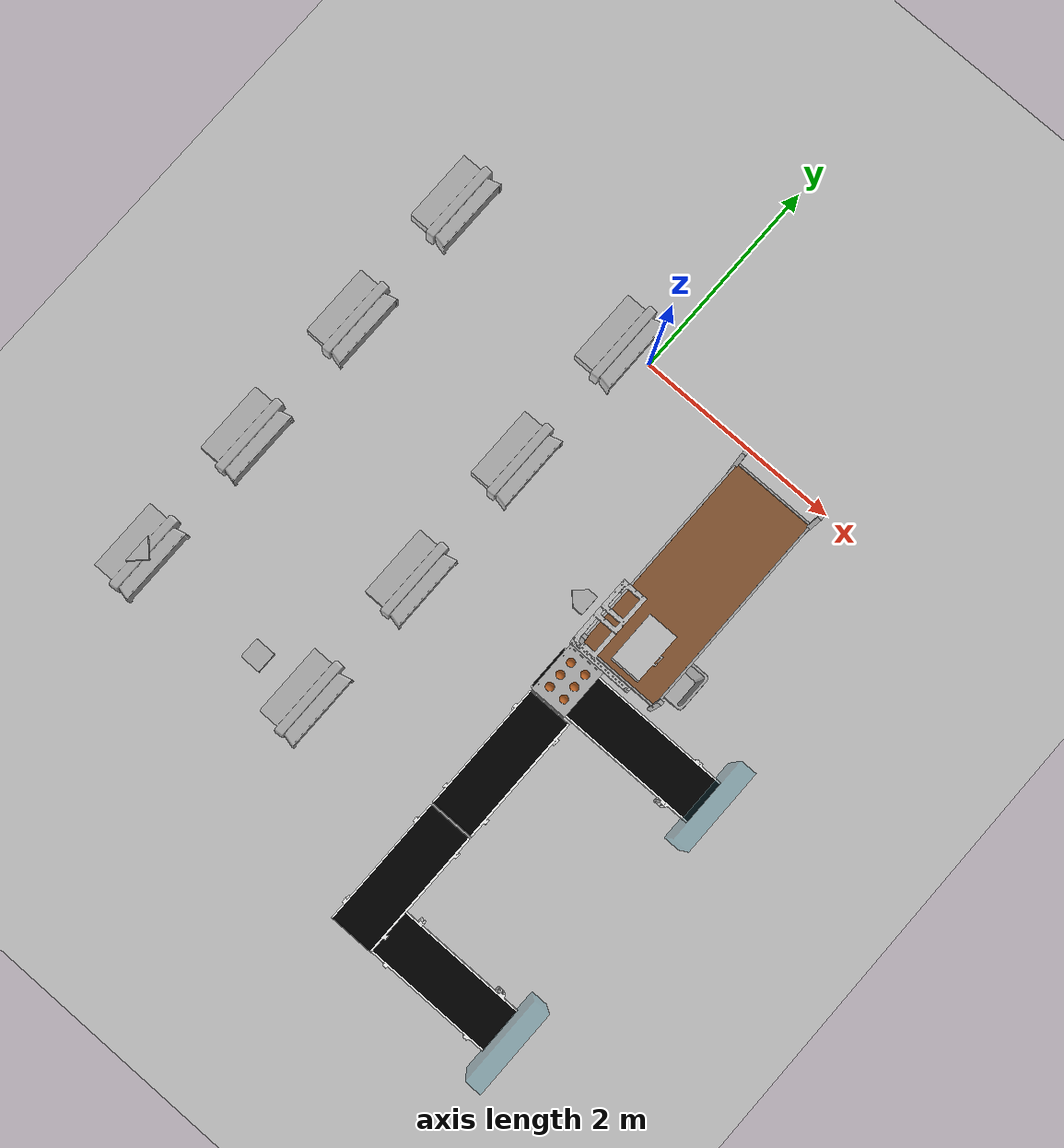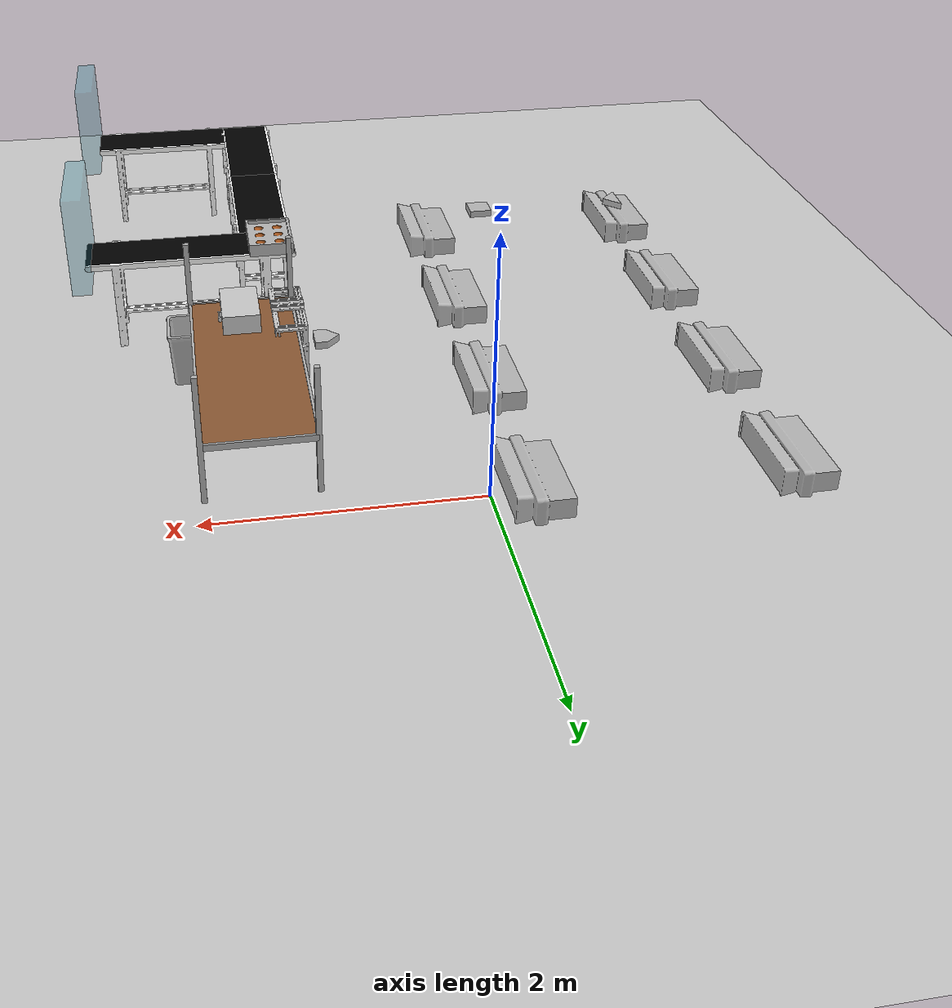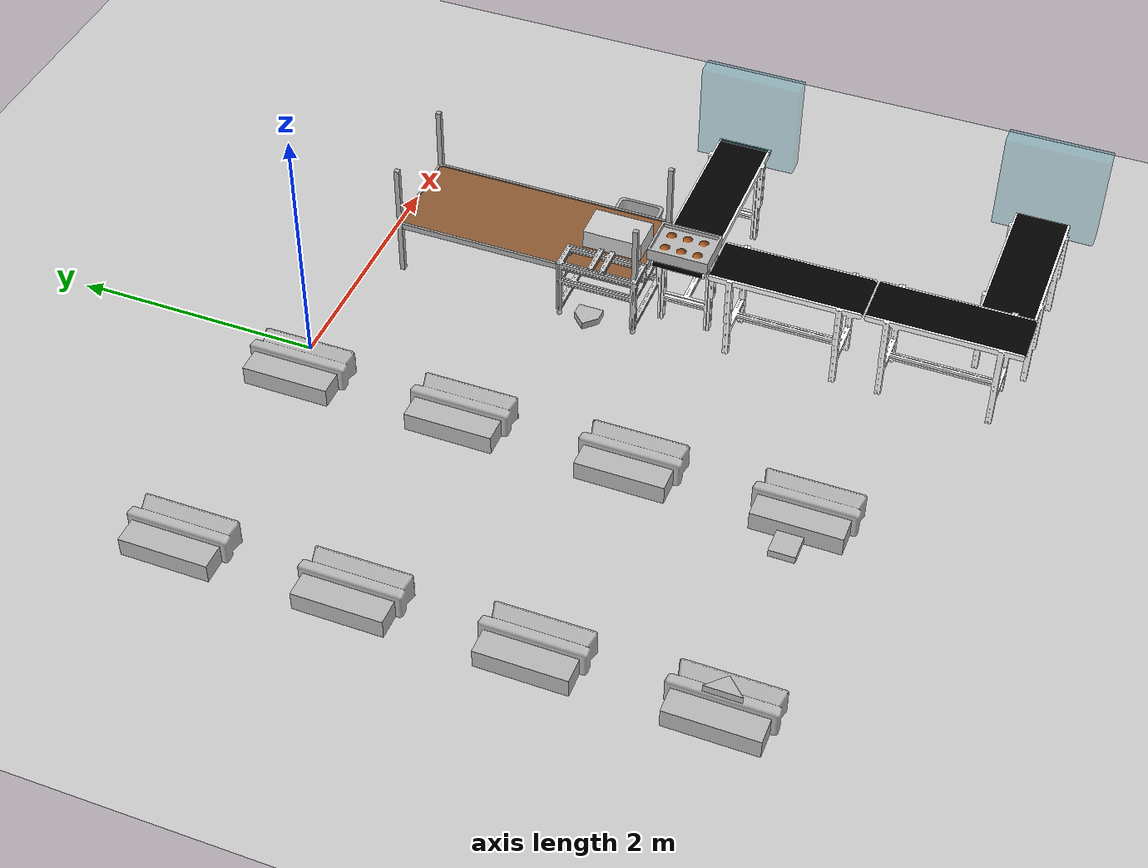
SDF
<sdf version="1.6">
 <world name="eyantra_world">
  <light name="light0" type="directional">
   <pose>0 -18.818 8 0.75 -0 0</pose>
   <diffuse>0.5 0.5 0.5 1</diffuse>
   <specular>0.1 0.1 0.1 1</specular>
   <direction>0.1 0.1 -0.9</direction>
   <attenuation>
    <range>20</range>
    <constant>0.5</constant>
    <linear>0.01</linear>
    <quadratic>0.001</quadratic>
   </attenuation>
   <cast_shadows>0</cast_shadows>
  </light>
  <light name="light3" type="directional">
   <pose>3.9239 1.64974 4 0 1.2 0</pose>
   <diffuse>0.5 0.5 0.5 1</diffuse>
   <specular>0.1 0.1 0.1 1</specular>
   <direction>0.1 0.1 -0.9</direction>
   <attenuation>
    <range>20</range>
    <constant>0.5</constant>
    <linear>0.01</linear>
    <quadratic>0.001</quadratic>
   </attenuation>
   <cast_shadows>0</cast_shadows>
  </light>
  <light name="light5" type="directional">
   <pose>0.454419 12.4783 5 -0.8 0 0</pose>
   <diffuse>0.5 0.5 0.5 1</diffuse>
   <specular>0.1 0.1 0.1 1</specular>
   <direction>0.1 0.1 -0.9</direction>
   <attenuation>
    <range>20</range>
    <constant>0.5</constant>
    <linear>0.01</linear>
    <quadratic>0.001</quadratic>
   </attenuation>
   <cast_shadows>0</cast_shadows>
  </light>
  <scene>
   <shadows>false</shadows>
   <ambient>0.5 0.5 0.5 1.0</ambient>
   <grid>false</grid>
   <sky><time>22</time><sunrise>20</sunrise><sunset>21</sunset><clouds><humidity>0</humidity></clouds></sky>
  </scene>
  <gravity>0 0 -9.81</gravity>
  <plugin filename="libignition-gazebo-sensors-system.so" name="ignition::gazebo::systems::Sensors">
   <render_engine>ogre2</render_engine>
  </plugin>
  <physics name="1ms" type="ignored">
   <max_step_size>0.001</max_step_size>
   <real_time_factor>1</real_time_factor>
   <real_time_update_rate>1000</real_time_update_rate>
  </physics>
  <plugin name="ignition::gazebo::systems::Physics" filename="ignition-gazebo-physics-system"/>
  <plugin name="ignition::gazebo::systems::UserCommands" filename="ignition-gazebo-user-commands-system"/>
  <plugin name="ignition::gazebo::systems::SceneBroadcaster" filename="ignition-gazebo-scene-broadcaster-system"/>
  <include>
   <name>ground_plane</name>
   <pose>-1.065 -2.417 0.0 0 0 0</pose>
   <uri>model://ground_plane</uri>
  </include>
  <include>
   <uri>model://rack</uri>
   <name>fertilizer_rack</name>
   <pose>1.5383 -1.2556 0 0 -0 -1.57</pose>
   <static>true</static>
  </include>
  <include>
   <uri>model://arm_base</uri>
   <name>arm_base</name>
   <pose>1.38496 -1.95421 0.253 0 -0 0</pose>
   <static>true</static>
  </include>
  <include>
   <uri>model://dock_shape</uri>
   <name>dock_shape</name>
   <pose>0.9906 -1.9498 0.2241 1.57 0.0 0.0</pose>
   <static>true</static>
  </include>
  <include>
   <uri>model://triangle_shape</uri>
   <name>triangle_shape</name>
   <pose>-2.1946 -4.0941 0.2505 1.57 0.0 3.14</pose>
   <static>true</static>
  </include>
  <include>
   <uri>model://square_shape</uri>
   <name>square_shape</name>
   <pose>-0.7241 -4.0941 0.2574 1.57 0.0 0.0</pose>
   <static>true</static>
  </include>
  <include>
   <uri>model://conveyor_belt</uri>
   <name>conveyor_belt_1</name>
   <pose>1.2991 -3.44556 0.05 0 -0 0</pose>
   <static>true</static>
  </include>
  <include>
   <uri>model://longer_conveyor_belt</uri>
   <name>conveyor_belt_2</name>
   <pose>1.9023 -2.6090 0.0515 0.0 0.0 1.57</pose>
   <static>true</static>
  </include>
  <include>
   <uri>model://conveyor_belt</uri>
   <name>conveyor_belt_5</name>
   <pose>2.08735 -5.04076 0.05 0 -0 1.57</pose>
   <static>true</static>
  </include>
  <include>
   <uri>model://conveyor_belt</uri>
   <name>conveyor_belt_6</name>
   <pose>1.2991 -4.66155 0.05 0 -0 0</pose>
   <static>true</static>
  </include>
  <include>
   <uri>model://window</uri>
   <name>window 1</name>
   <pose>2.76 -5.05 0.134 0.0 0.0 1.57</pose>
   <static>true</static>
  </include>
  <include>
   <uri>model://window</uri>
   <name>window 2</name>
   <pose>2.76 -2.6212 0.134 0.0 0.0 1.57</pose>
   <static>true</static>
  </include>
  <include>
   <uri>model://fruit_tray</uri>
   <name>fruit_tray</name>
   <pose>1.266 -2.5956 0.7951 0.0 0.0 0.0</pose>
  </include>
  <include>
   <uri>model://TrashBin</uri>
   <name>TrashBin</name>
   <pose>2.0 -1.95421 0.0 0 -0 0</pose>
   <static>true</static>
  </include>
  <include>
   <uri>model://trough</uri>
   <name>trough1</name>
   <pose>-2.3952 -4.0852 0 0 0 -1.57</pose>
   <static>true</static>
  </include>
  <include>
   <uri>model://trough</uri>
   <name>trough2</name>
   <pose>-2.3952 -2.7458 0 0 0 -1.57</pose>
   <static>true</static>
  </include>
  <include>
   <uri>model://trough</uri>
   <name>trough3</name>
   <pose>-2.3953 -1.3886 0 0 0 -1.57</pose>
   <static>true</static>
  </include>
  <include>
   <uri>model://trough</uri>
   <name>trough4</name>
   <pose>-2.3954 -0.041 0 0 0 -1.57</pose>
   <static>true</static>
  </include>
  <include>
   <uri>model://trough</uri>
   <name>trough5</name>
   <pose>-0.52164 -4.0852 0 0 0 -1.57</pose>
   <static>true</static>
  </include>
  <include>
   <uri>model://trough</uri>
   <name>trough6</name>
   <pose>-0.521623 -2.7458 0 0 0 -1.57</pose>
   <static>true</static>
  </include>
  <include>
   <uri>model://trough</uri>
   <name>trough7</name>
   <pose>-0.521622 -1.3886 0 0 0 -1.57</pose>
   <static>true</static>
  </include>
  <include>
   <uri>model://trough</uri>
   <name>trough8</name>
   <pose>-0.5216 -0.041 0 0 0 -1.57</pose>
   <static>true</static>
  </include>
 </world>
</sdf>

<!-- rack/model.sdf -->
<sdf version='1.6'>
  <model name='rack'>
    <link name="surface">
      <inertial>
          <mass>0.1</mass>
          <inertia>
              <ixx>0.00001</ixx>
              <ixy>0.000</ixy>
              <ixz>0.000</ixz>
              <iyy>0.00001</iyy>
              <iyz>0.000</iyz>
              <izz>0.00001</izz>
          </inertia>
      </inertial>
      <visual name='surface_visual'>
        <pose relative_to=''>0 0 0.45 0 0 0</pose>
        <geometry>
          <box>
            <size>2 0.8 0.03</size>
          </box>
        </geometry>
        <material>
          <ambient>0.55 0.35 0.2 1</ambient>
          <diffuse>0.55 0.35 0.2 1</diffuse>
          <specular>0.1 0.1 0.1 1</specular>
          <emissive>0 0 0 1</emissive>
        </material>
        <transparency>0</transparency>
        <cast_shadows>1</cast_shadows>
      </visual>
      <collision name='surface_collision'>
        <pose relative_to=''>0 0 0.45 0 0 0</pose>
        <laser_retro>0</laser_retro>
        <max_contacts>10</max_contacts>
        <geometry>
          <box>
            <size>2 0.82 0.03</size>
          </box>
        </geometry>
        <surface>
          <friction>
            <ode>
              <mu>1000000</mu>
              <mu2>1000000</mu2>
            </ode>
          </friction>
          <bounce>
            <restitution_coefficient>0</restitution_coefficient>
          </bounce>
          <contact>
            <ode>
              <kp>1e13</kp>
              <kd>1</kd>
            </ode>
          </contact>
        </surface>
      </collision>

      <visual name='left_holding_visual'>
        <pose relative_to=''>0 0.4 0.45 0 0 0</pose>
        <geometry>
          <box>
            <size>1.98 0.02 0.05</size>
          </box>
        </geometry>
        <material>
          <ambient>0.3 0.3 0.3 1</ambient>
          <diffuse>0.7 0.7 0.7 1</diffuse>
          <specular>0.01 0.01 0.01 1</specular>
          <emissive>0 0 0 1</emissive>
          <pbr>
            <metal>
              <roughness>0.8</roughness>
              <metalness>0.1</metalness>
            </metal>
          </pbr>
        </material>
        <transparency>0</transparency>
        <cast_shadows>1</cast_shadows>
      </visual>

      <visual name='right_holding_visual'>
        <pose relative_to=''>0 -0.4 0.45 0 0 0</pose>
        <geometry>
          <box>
            <size>1.98 0.02 0.05</size>
          </box>
        </geometry>
        <material>
          <ambient>0.3 0.3 0.3 1</ambient>
          <diffuse>0.7 0.7 0.7 1</diffuse>
          <specular>0.01 0.01 0.01 1</specular>
          <emissive>0 0 0 1</emissive>
          <pbr>
            <metal>
              <roughness>0.8</roughness>
              <metalness>0.1</metalness>
            </metal>
          </pbr>
        </material>
        <transparency>0</transparency>
        <cast_shadows>1</cast_shadows>
      </visual>

      <visual name='front_holding_visual'>
        <pose relative_to=''>1.0 0 0.45 0 0 1.57</pose>
        <geometry>
          <box>
            <size>0.8 0.02 0.05</size>
          </box>
        </geometry>
        <material>
          <ambient>0.3 0.3 0.3 1</ambient>
          <diffuse>0.7 0.7 0.7 1</diffuse>
          <specular>0.01 0.01 0.01 1</specular>
          <emissive>0 0 0 1</emissive>
          <pbr>
            <metal>
              <roughness>0.8</roughness>
              <metalness>0.1</metalness>
            </metal>
          </pbr>
        </material>
        <transparency>0</transparency>
        <cast_shadows>1</cast_shadows>
      </visual>

      <visual name='back_holding_visual'>
        <pose relative_to=''>-1.0 0 0.45 0 0 1.57</pose>
        <geometry>
          <box>
            <size>0.8 0.02 0.05</size>
          </box>
        </geometry>
        <material>
          <ambient>0.3 0.3 0.3 1</ambient>
          <diffuse>0.7 0.7 0.7 1</diffuse>
          <specular>0.01 0.01 0.01 1</specular>
          <emissive>0 0 0 1</emissive>
          <pbr>
            <metal>
              <roughness>0.8</roughness>
              <metalness>0.1</metalness>
            </metal>
          </pbr>
        </material>
        <transparency>0</transparency>
        <cast_shadows>1</cast_shadows>
      </visual>

      <visual name='front_left_leg_visual'>
        <pose relative_to=''>0.99 0.4 0.5 0 0 0</pose>
        <geometry>
          <box>
            <size>0.04 0.04 1.0</size>
          </box>
        </geometry>
        <material>
          <ambient>0.3 0.3 0.3 1</ambient>
          <diffuse>0.7 0.7 0.7 1</diffuse>
          <specular>0.01 0.01 0.01 1</specular>
          <emissive>0 0 0 1</emissive>
          <pbr>
            <metal>
              <roughness>0.8</roughness>
              <metalness>0.1</metalness>
            </metal>
          </pbr>
        </material>
        <cast_shadows>1</cast_shadows>
      </visual>
      <collision name='front_left_leg_collision'>
        <pose relative_to=''>0.99 0.4 0.5 0 0 0</pose>
        <laser_retro>0</laser_retro>
        <max_contacts>10</max_contacts>
        <geometry>
          <box>
            <size>0.04 0.04 1.0</size>
          </box>
        </geometry>
        <surface>
          <friction>
            <ode>
              <mu>0.1</mu>
              <mu2>0.1</mu2>
            </ode>
          </friction>
          <bounce>
            <restitution_coefficient>0</restitution_coefficient>
          </bounce>
          <contact>
            <ode>
              <kp>1e6</kp>
              <kd>1</kd>
            </ode>
          </contact>
        </surface>
      </collision>

      <visual name='front_right_leg_visual'>
        <pose relative_to=''>0.99 -0.4 0.5 0 0 0</pose>
        <geometry>
          <box>
            <size>0.04 0.04 1.0</size>
          </box>
        </geometry>
        <material>
          <ambient>0.3 0.3 0.3 1</ambient>
          <diffuse>0.7 0.7 0.7 1</diffuse>
          <specular>0.01 0.01 0.01 1</specular>
          <emissive>0 0 0 1</emissive>
          <pbr>
            <metal>
              <roughness>0.8</roughness>
              <metalness>0.1</metalness>
            </metal>
          </pbr>
        </material>
        <cast_shadows>1</cast_shadows>
      </visual>
      <collision name='front_right_leg_collision'>
        <pose relative_to=''>0.99 -0.4 0.5 0 0 0</pose>
        <laser_retro>0</laser_retro>
        <max_contacts>10</max_contacts>
        <geometry>
          <box>
            <size>0.04 0.04 1.0</size>
          </box>
        </geometry>
        <surface>
          <friction>
            <ode>
              <mu>0.1</mu>
              <mu2>0.1</mu2>
            </ode>
          </friction>
          <bounce>
            <restitution_coefficient>0</restitution_coefficient>
          </bounce>
          <contact>
            <ode>
              <kp>1e6</kp>
              <kd>1</kd>
            </ode>
          </contact>
        </surface>
      </collision>

      <visual name='back_left_leg_visual'>
        <pose relative_to=''>-0.99 0.4 0.5 0 0 0</pose>
        <geometry>
          <box>
            <size>0.04 0.04 1.0</size>
          </box>
        </geometry>
        <material>
          <ambient>0.3 0.3 0.3 1</ambient>
          <diffuse>0.7 0.7 0.7 1</diffuse>
          <specular>0.01 0.01 0.01 1</specular>
          <emissive>0 0 0 1</emissive>
          <pbr>
            <metal>
              <roughness>0.8</roughness>
              <metalness>0.1</metalness>
            </metal>
          </pbr>
        </material>
        <cast_shadows>1</cast_shadows>
      </visual>
      <collision name='back_left_leg_collision'>
        <pose relative_to=''>-0.99 0.4 0.5 0 0 0</pose>
        <laser_retro>0</laser_retro>
        <max_contacts>10</max_contacts>
        <geometry>
          <box>
            <size>0.04 0.04 1.0</size>
          </box>
        </geometry>
        <surface>
          <friction>
            <ode>
              <mu>0.1</mu>
              <mu2>0.1</mu2>
            </ode>
          </friction>
          <bounce>
            <restitution_coefficient>0</restitution_coefficient>
          </bounce>
          <contact>
            <ode>
              <kp>1e6</kp>
              <kd>1</kd>
            </ode>
          </contact>
        </surface>
      </collision>

      <visual name='back_right_leg_visual'>
        <pose relative_to=''>-0.99 -0.4 0.5 0 0 0</pose>
        <geometry>
          <box>
            <size>0.04 0.04 1.0</size>
          </box>
        </geometry>
        <material>
          <ambient>0.3 0.3 0.3 1</ambient>
          <diffuse>0.7 0.7 0.7 1</diffuse>
          <specular>0.01 0.01 0.01 1</specular>
          <emissive>0 0 0 1</emissive>
          <pbr>
            <metal>
              <roughness>0.8</roughness>
              <metalness>0.1</metalness>
            </metal>
          </pbr>
        </material>
        <cast_shadows>1</cast_shadows>
      </visual>
      <collision name='back_right_leg_collision'>
        <pose relative_to=''>-0.99 -0.4 0.5 0 0 0</pose>
        <laser_retro>0</laser_retro>
        <max_contacts>10</max_contacts>
        <geometry>
          <box>
            <size>0.04 0.04 1.0</size>
          </box>
        </geometry>
        <surface>
          <friction>
            <ode>
              <mu>0.1</mu>
              <mu2>0.1</mu2>
            </ode>
          </friction>
          <bounce>
            <restitution_coefficient>0</restitution_coefficient>
          </bounce>
          <contact>
            <ode>
              <kp>1e6</kp>
              <kd>1</kd>
            </ode>
          </contact>
        </surface>
      </collision>
    </link>

  </model>
</sdf>

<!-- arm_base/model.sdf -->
<sdf version='1.7'>
  <model name='arm_base'>
    <link name='link'>
      <inertial>
        <mass>1</mass>
        <inertia>
          <ixx>0.166667</ixx>
          <ixy>0</ixy>
          <ixz>0</ixz>
          <iyy>0.166667</iyy>
          <iyz>0</iyz>
          <izz>0.166667</izz>
        </inertia>
        <pose>0 0 0 0 -0 0</pose>
      </inertial>
      <self_collide>0</self_collide>
      <enable_wind>0</enable_wind>
      <kinematic>0</kinematic>
      <pose>0 0 0 0 -0 0</pose>
      <gravity>1</gravity>
      <visual name='visual1'>
        <cast_shadows>0</cast_shadows>
        <geometry>
          <mesh>
            <uri>model://arm_base/meshes/arm_base.dae</uri>
          </mesh>
        </geometry>
        <material>
          <shader type='pixel'>
            <normal_map>__default__</normal_map>
          </shader>
          <emissive>0 0 0 1</emissive>

        </material>
        <pose>0 0 -0.25 0 -0 0</pose>
        <transparency>0</transparency>
        <pose>0 0 0 0 -0 0</pose>
        <transparency>0</transparency>
      </visual>
      <collision name='collision'>
        <laser_retro>0</laser_retro>
        <max_contacts>10</max_contacts>
        <pose>0 0 0 0 -0 0</pose>
        <geometry>
          <box>
            <size>0.7 0.7 0.52</size>
          </box>
        </geometry>
        <surface>
          <friction>
            <ode>
              <mu>1</mu>
              <mu2>1</mu2>
              <fdir1>0 0 0</fdir1>
              <slip1>0</slip1>
              <slip2>0</slip2>
            </ode>
            <torsional>
              <coefficient>1</coefficient>
              <patch_radius>0</patch_radius>
              <surface_radius>0</surface_radius>
              <use_patch_radius>1</use_patch_radius>
              <ode>
                <slip>0</slip>
              </ode>
            </torsional>
          </friction>
          <bounce>
            <restitution_coefficient>0</restitution_coefficient>
            <threshold>1e+06</threshold>
          </bounce>
          <contact>
            <collide_without_contact>0</collide_without_contact>
            <collide_without_contact_bitmask>1</collide_without_contact_bitmask>
            <collide_bitmask>1</collide_bitmask>
            <ode>
              <soft_cfm>0</soft_cfm>
              <soft_erp>0.2</soft_erp>
              <kp>1e+13</kp>
              <kd>1</kd>
              <max_vel>0.01</max_vel>
              <min_depth>0</min_depth>
            </ode>
            <bullet>
              <split_impulse>1</split_impulse>
              <split_impulse_penetration_threshold>-0.01</split_impulse_penetration_threshold>
              <soft_cfm>0</soft_cfm>
              <soft_erp>0.2</soft_erp>
              <kp>1e+13</kp>
              <kd>1</kd>
            </bullet>
          </contact>
        </surface>
      </collision>
    </link>
    <static>1</static>
    <allow_auto_disable>1</allow_auto_disable>
  </model>
</sdf>

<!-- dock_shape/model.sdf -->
<sdf version="1.6">
  <model name='dock_shape'>
    <static>true</static>
    <link name="body">
      <pose>0 0 0 0 0 0</pose>

        <visual name="visual">
          <geometry>
            <mesh><uri>model://dock_shape/meshes/dock_shape.obj</uri></mesh>
          </geometry>
        </visual>

        <collision name="collision">
          <geometry>
            <mesh><uri>model://dock_shape/meshes/dock_shape.obj</uri></mesh>
          </geometry>
        </collision>

    </link>
  </model>
</sdf>

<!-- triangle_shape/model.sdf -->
<sdf version="1.6">
  <model name='triangle_shape'>
    <static>true</static>
    <link name="body">
      <pose>0 0 0 0 0 0</pose>

        <visual name="visual">
          <geometry>
            <mesh><uri>model://triangle_shape/meshes/triangle_shape.obj</uri></mesh>
          </geometry>
        </visual>

        <collision name="collision">
          <geometry>
            <mesh><uri>model://triangle_shape/meshes/triangle_shape.obj</uri></mesh>
          </geometry>
        </collision>

    </link>
  </model>
</sdf>

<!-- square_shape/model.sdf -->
<sdf version="1.6">
  <model name='square_shape'>
    <static>true</static>
    <link name="body">
      <pose>0 0 0 0 0 0</pose>

        <visual name="visual">
          <geometry>
            <mesh><uri>model://square_shape/meshes/square_shape.obj</uri></mesh>
          </geometry>
        </visual>

        <collision name="collision">
          <geometry>
            <mesh><uri>model://square_shape/meshes/square_shape.obj</uri></mesh>
          </geometry>
        </collision>

    </link>
  </model>
</sdf>

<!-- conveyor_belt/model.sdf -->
<sdf version="1.9">

  <model name="conveyor_belt">

    <static>true</static>

    <link name="link">

      <pose>0 0 0 0 0 0</pose>

      <visual name="visual">

        <pose>0 0 0 0 0 0</pose>

        <geometry>
          <mesh>
            <uri>meshes/conveyor_belt.dae</uri>
          </mesh>
        </geometry>

      </visual>

      <collision name="collision">

        <pose>0 0 0.71 0 0 0</pose>

        <geometry>
          <box>
            <size>0.50 1.20 0.055</size>
          </box>
        </geometry>

        <surface>

          <contact>
            <ode>
              <kp>100000</kp>
              <kd>10</kd>
              <min_depth>0.001</min_depth>
              <max_vel>1.0</max_vel>
            </ode>
          </contact>

          <friction>
            <ode>

              <!--
                La cinta se mueve en el eje Y local.
              -->

              <fdir1>1 0 0</fdir1>

              <mu>2.0</mu>

              <mu2>0.5</mu2>

            </ode>
          </friction>

        </surface>

      </collision>

    </link>

    <!-- TRACK CONTROLLER                                       -->

    <plugin
      filename="gz-sim-track-controller-system"
      name="gz::sim::systems::TrackController">

      <link>link</link>

      <track_orientation>0 0 1.57079632679</track_orientation>

      <min_velocity>-1.0</min_velocity>

      <max_velocity>1.0</max_velocity>

    </plugin>

  </model>

</sdf>

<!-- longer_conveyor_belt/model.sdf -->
<sdf version="1.8">

  <model name="longer_conveyor_belt">
    <!-- Make the fixed part static -->
    <static>true</static>

    <!-- ==== Link 1: visual & collision of the belt body ==== -->
    <link name="belt_fixed">
      <pose>0 0 0 0 0 0</pose>

      <visual name="belt_visual">
        <pose>0 0 0 0 0 0</pose>
        <cast_shadows>false</cast_shadows>
        <geometry>
          <mesh>
            <uri>model://longer_conveyor_belt/meshes/longer_conveyor_belt.dae</uri>
            <scale>1 1 1</scale>
          </mesh>
        </geometry>
      </visual>

      <collision name="belt_collision">
        <geometry>
          <box>
            <size>0.463 1.66 0.743</size>
          </box>
        </geometry>
        <pose>0 0 0.3715 0 0 0</pose>
      </collision>
    </link>

    <!-- ==== Link 2: Moving belt surface ==== -->

    <!-- ==== Joint ==== -->

  </model>
</sdf>

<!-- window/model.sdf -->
<sdf version='1.6'>
  <model name='window'>
    <link name='link_2'>
         <visual name='visual'>
        <pose frame=''>0 0 0.9 0 -0 0</pose>
        <geometry>
          <box>
            <size>0.8 0.15 0.8</size>
          </box>
        </geometry>
         <material>
          <lighting>1</lighting>
             <ambient>0.1 0.5 0.6 1</ambient>
          <diffuse>0.1 0.5 0.6 1</diffuse>
          <specular>0.01 0.01 0.01 1</specular>
          <emissive>0 0 0 1</emissive>
        </material>
        <cast_shadows>1</cast_shadows>
        <transparency>0.7</transparency>
      </visual>
      <collision name='collision'>
        <laser_retro>0</laser_retro>
        <max_contacts>10</max_contacts>
        <pose frame=''>0 0 0.9 0 -0 0</pose>
        <geometry>
          <box>
            <size>0.8 0.15 0.8</size>
          </box>
        </geometry>

      </collision>
    </link>
    <static>1</static>
    <allow_auto_disable>1</allow_auto_disable>
  </model>
</sdf>

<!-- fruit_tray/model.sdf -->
<sdf version="1.6">
  <model name='fruit_tray'>
    <static>true</static>
    <link name="body">
      <pose>0 0 0 0 0 0</pose>

        <visual name="visual">
          <geometry>
            <mesh><uri>model://fruit_tray/meshes/Fruit_Tray.dae</uri></mesh>
          </geometry>
        </visual>

        <collision name="collision">
          <geometry>
            <mesh><uri>model://fruit_tray/meshes/Fruit_Tray.dae</uri></mesh>
          </geometry>
        </collision>

    </link>
  </model>
</sdf>

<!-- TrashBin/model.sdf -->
<sdf version="1.6">
  <model name='TrashBin'>
    <static>true</static>
    <link name="body">
      <pose>0 0 0 0 0 0</pose>

        <visual name="visual">
          <geometry>
            <mesh><uri>model://TrashBin/meshes/TrashBin.obj</uri></mesh>
          </geometry>
        </visual>

        <collision name="collision">
          <geometry>
            <mesh><uri>model://TrashBin/meshes/TrashBin.obj</uri></mesh>
          </geometry>
        </collision>

    </link>
  </model>
</sdf>

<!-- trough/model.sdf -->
<sdf version="1.6">
    <model name="trough">
	   <static>true</static>
      <link name="trough_link">

        <visual name="visual">
          <geometry>
            <mesh><uri>model://trough/meshes/truf_brick.obj</uri></mesh>
          </geometry>
        </visual>

        <collision name="collision">
          <pose>0 0.3 0 0 0 0</pose>
          <geometry>
          <box>
            <size>0.75 0.2 0.42</size>
          </box>
           </geometry>
        </collision>
      </link>

    </model>
</sdf>
